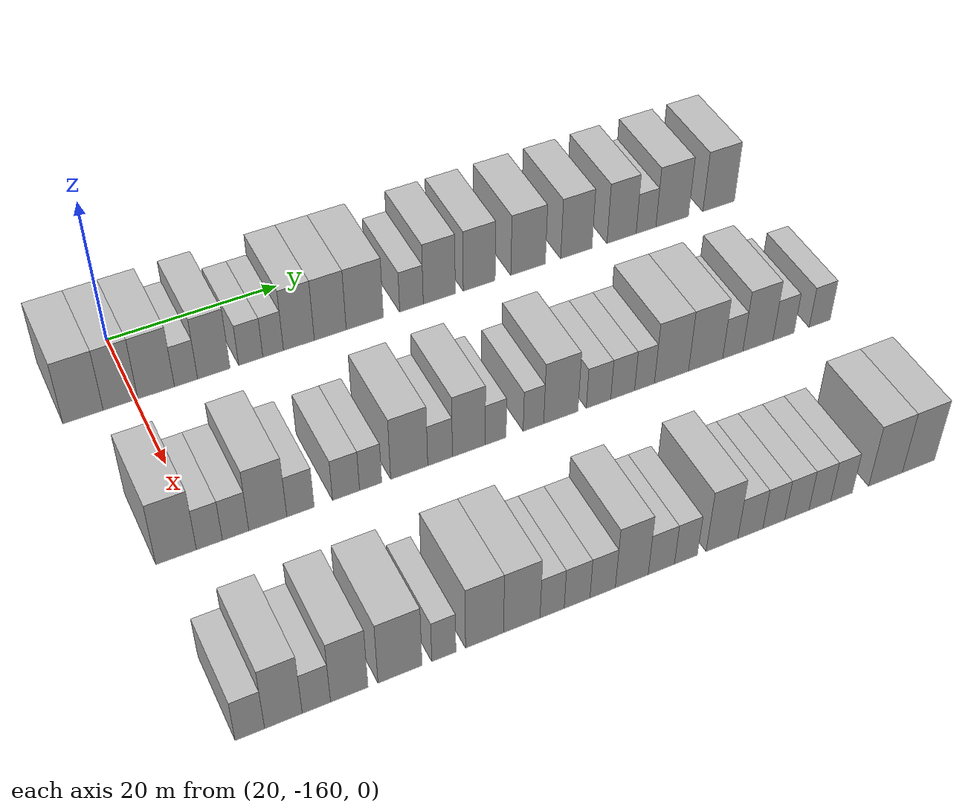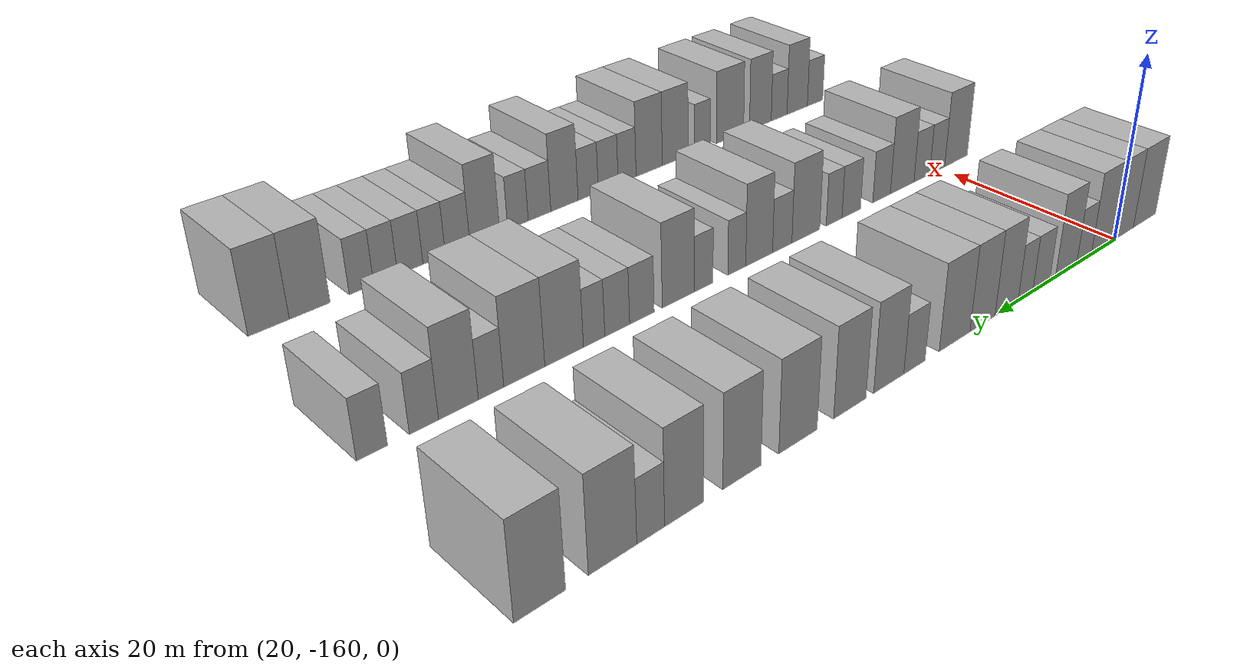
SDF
<sdf version="1.6">
 <world name="default">
  <model name="building_22">
   <static>1</static>
   <pose>25.0000 -165.7522 0 0.000000 0.000000 0.000000</pose>
   <link name="link">
    <pose>0 0 4.50 0 0 0</pose>
    <collision name="collision"><geometry><box><size>10.0000 4.4152 9.0000</size></box></geometry></collision>
    <visual name="visual">
     <cast_shadows>0</cast_shadows>
     <geometry><box><size>10.0000 4.4152 9.0000</size></box></geometry>
     <material>
      <script>
       <uri>model://HANNAS_wall/materials/scripts</uri>
       <uri>model://HANNAS_wall/materials/textures</uri>
       <name>vrc/HANNAS_wall</name>
      </script>
     </material>
    </visual>
   </link>
  </model>
  <model name="building_23">
   <static>1</static>
   <pose>25.0000 -161.6356 0 0.000000 0.000000 0.000000</pose>
   <link name="link">
    <pose>0 0 4.50 0 0 0</pose>
    <collision name="collision"><geometry><box><size>10.0000 3.8179 9.0000</size></box></geometry></collision>
    <visual name="visual">
     <cast_shadows>0</cast_shadows>
     <geometry><box><size>10.0000 3.8179 9.0000</size></box></geometry>
     <material>
      <script>
       <uri>model://HANNAS_wall/materials/scripts</uri>
       <uri>model://HANNAS_wall/materials/textures</uri>
       <name>vrc/HANNAS_wall</name>
      </script>
     </material>
    </visual>
   </link>
  </model>
  <model name="building_24">
   <static>1</static>
   <pose>25.0000 -157.6680 0 0.000000 0.000000 0.000000</pose>
   <link name="link">
    <pose>0 0 4.50 0 0 0</pose>
    <collision name="collision"><geometry><box><size>10.0000 4.1173 9.0000</size></box></geometry></collision>
    <visual name="visual">
     <cast_shadows>0</cast_shadows>
     <geometry><box><size>10.0000 4.1173 9.0000</size></box></geometry>
     <material>
      <script>
       <uri>model://HANNAS_wall/materials/scripts</uri>
       <uri>model://HANNAS_wall/materials/textures</uri>
       <name>vrc/HANNAS_wall</name>
      </script>
     </material>
    </visual>
   </link>
  </model>
  <model name="building_25">
   <static>1</static>
   <pose>25.0000 -154.2986 0 0.000000 0.000000 0.000000</pose>
   <link name="link">
    <pose>0 0 3.00 0 0 0</pose>
    <collision name="collision"><geometry><box><size>10.0000 2.6216 6.0000</size></box></geometry></collision>
    <visual name="visual">
     <cast_shadows>0</cast_shadows>
     <geometry><box><size>10.0000 2.6216 6.0000</size></box></geometry>
     <material>
      <script>
       <uri>model://HANNAS_wall/materials/scripts</uri>
       <uri>model://HANNAS_wall/materials/textures</uri>
       <name>vrc/HANNAS_wall</name>
      </script>
     </material>
    </visual>
   </link>
  </model>
  <model name="building_26">
   <static>1</static>
   <pose>25.0000 -151.1317 0 0.000000 0.000000 0.000000</pose>
   <link name="link">
    <pose>0 0 4.50 0 0 0</pose>
    <collision name="collision"><geometry><box><size>10.0000 3.7122 9.0000</size></box></geometry></collision>
    <visual name="visual">
     <cast_shadows>0</cast_shadows>
     <geometry><box><size>10.0000 3.7122 9.0000</size></box></geometry>
     <material>
      <script>
       <uri>model://HANNAS_wall/materials/scripts</uri>
       <uri>model://HANNAS_wall/materials/textures</uri>
       <name>vrc/HANNAS_wall</name>
      </script>
     </material>
    </visual>
   </link>
  </model>
  <model name="building_27">
   <static>1</static>
   <pose>25.0000 -146.8694 0 0.000000 0.000000 0.000000</pose>
   <link name="link">
    <pose>0 0 3.00 0 0 0</pose>
    <collision name="collision"><geometry><box><size>10.0000 2.8124 6.0000</size></box></geometry></collision>
    <visual name="visual">
     <cast_shadows>0</cast_shadows>
     <geometry><box><size>10.0000 2.8124 6.0000</size></box></geometry>
     <material>
      <script>
       <uri>model://HANNAS_wall/materials/scripts</uri>
       <uri>model://HANNAS_wall/materials/textures</uri>
       <name>vrc/HANNAS_wall</name>
      </script>
     </material>
    </visual>
   </link>
  </model>
  <model name="building_28">
   <static>1</static>
   <pose>25.0000 -144.2595 0 0.000000 0.000000 0.000000</pose>
   <link name="link">
    <pose>0 0 3.00 0 0 0</pose>
    <collision name="collision"><geometry><box><size>10.0000 2.4075 6.0000</size></box></geometry></collision>
    <visual name="visual">
     <cast_shadows>0</cast_shadows>
     <geometry><box><size>10.0000 2.4075 6.0000</size></box></geometry>
     <material>
      <script>
       <uri>model://HANNAS_wall/materials/scripts</uri>
       <uri>model://HANNAS_wall/materials/textures</uri>
       <name>vrc/HANNAS_wall</name>
      </script>
     </material>
    </visual>
   </link>
  </model>
  <model name="building_29">
   <static>1</static>
   <pose>25.0000 -141.2318 0 0.000000 0.000000 0.000000</pose>
   <link name="link">
    <pose>0 0 4.50 0 0 0</pose>
    <collision name="collision"><geometry><box><size>10.0000 3.6478 9.0000</size></box></geometry></collision>
    <visual name="visual">
     <cast_shadows>0</cast_shadows>
     <geometry><box><size>10.0000 3.6478 9.0000</size></box></geometry>
     <material>
      <script>
       <uri>model://HANNAS_wall/materials/scripts</uri>
       <uri>model://HANNAS_wall/materials/textures</uri>
       <name>vrc/HANNAS_wall</name>
      </script>
     </material>
    </visual>
   </link>
  </model>
  <model name="building_30">
   <static>1</static>
   <pose>25.0000 -137.4980 0 0.000000 0.000000 0.000000</pose>
   <link name="link">
    <pose>0 0 4.50 0 0 0</pose>
    <collision name="collision"><geometry><box><size>10.0000 3.8199 9.0000</size></box></geometry></collision>
    <visual name="visual">
     <cast_shadows>0</cast_shadows>
     <geometry><box><size>10.0000 3.8199 9.0000</size></box></geometry>
     <material>
      <script>
       <uri>model://HANNAS_wall/materials/scripts</uri>
       <uri>model://HANNAS_wall/materials/textures</uri>
       <name>vrc/HANNAS_wall</name>
      </script>
     </material>
    </visual>
   </link>
  </model>
  <model name="building_31">
   <static>1</static>
   <pose>25.0000 -133.3413 0 0.000000 0.000000 0.000000</pose>
   <link name="link">
    <pose>0 0 4.50 0 0 0</pose>
    <collision name="collision"><geometry><box><size>10.0000 4.4935 9.0000</size></box></geometry></collision>
    <visual name="visual">
     <cast_shadows>0</cast_shadows>
     <geometry><box><size>10.0000 4.4935 9.0000</size></box></geometry>
     <material>
      <script>
       <uri>model://HANNAS_wall/materials/scripts</uri>
       <uri>model://HANNAS_wall/materials/textures</uri>
       <name>vrc/HANNAS_wall</name>
      </script>
     </material>
    </visual>
   </link>
  </model>
  <model name="building_32">
   <static>1</static>
   <pose>25.0000 -127.6372 0 0.000000 0.000000 0.000000</pose>
   <link name="link">
    <pose>0 0 3.00 0 0 0</pose>
    <collision name="collision"><geometry><box><size>10.0000 2.9146 6.0000</size></box></geometry></collision>
    <visual name="visual">
     <cast_shadows>0</cast_shadows>
     <geometry><box><size>10.0000 2.9146 6.0000</size></box></geometry>
     <material>
      <script>
       <uri>model://HANNAS_wall/materials/scripts</uri>
       <uri>model://HANNAS_wall/materials/textures</uri>
       <name>vrc/HANNAS_wall</name>
      </script>
     </material>
    </visual>
   </link>
  </model>
  <model name="building_33">
   <static>1</static>
   <pose>25.0000 -124.1847 0 0.000000 0.000000 0.000000</pose>
   <link name="link">
    <pose>0 0 4.50 0 0 0</pose>
    <collision name="collision"><geometry><box><size>10.0000 3.9905 9.0000</size></box></geometry></collision>
    <visual name="visual">
     <cast_shadows>0</cast_shadows>
     <geometry><box><size>10.0000 3.9905 9.0000</size></box></geometry>
     <material>
      <script>
       <uri>model://HANNAS_wall/materials/scripts</uri>
       <uri>model://HANNAS_wall/materials/textures</uri>
       <name>vrc/HANNAS_wall</name>
      </script>
     </material>
    </visual>
   </link>
  </model>
  <model name="building_34">
   <static>1</static>
   <pose>25.0000 -119.1687 0 0.000000 0.000000 0.000000</pose>
   <link name="link">
    <pose>0 0 4.50 0 0 0</pose>
    <collision name="collision"><geometry><box><size>10.0000 4.0416 9.0000</size></box></geometry></collision>
    <visual name="visual">
     <cast_shadows>0</cast_shadows>
     <geometry><box><size>10.0000 4.0416 9.0000</size></box></geometry>
     <material>
      <script>
       <uri>model://HANNAS_wall/materials/scripts</uri>
       <uri>model://HANNAS_wall/materials/textures</uri>
       <name>vrc/HANNAS_wall</name>
      </script>
     </material>
    </visual>
   </link>
  </model>
  <model name="building_35">
   <static>1</static>
   <pose>25.0000 -112.9181 0 0.000000 0.000000 0.000000</pose>
   <link name="link">
    <pose>0 0 4.50 0 0 0</pose>
    <collision name="collision"><geometry><box><size>10.0000 4.4596 9.0000</size></box></geometry></collision>
    <visual name="visual">
     <cast_shadows>0</cast_shadows>
     <geometry><box><size>10.0000 4.4596 9.0000</size></box></geometry>
     <material>
      <script>
       <uri>model://HANNAS_wall/materials/scripts</uri>
       <uri>model://HANNAS_wall/materials/textures</uri>
       <name>vrc/HANNAS_wall</name>
      </script>
     </material>
    </visual>
   </link>
  </model>
  <model name="building_36">
   <static>1</static>
   <pose>25.0000 -106.6314 0 0.000000 0.000000 0.000000</pose>
   <link name="link">
    <pose>0 0 4.50 0 0 0</pose>
    <collision name="collision"><geometry><box><size>10.0000 4.1138 9.0000</size></box></geometry></collision>
    <visual name="visual">
     <cast_shadows>0</cast_shadows>
     <geometry><box><size>10.0000 4.1138 9.0000</size></box></geometry>
     <material>
      <script>
       <uri>model://HANNAS_wall/materials/scripts</uri>
       <uri>model://HANNAS_wall/materials/textures</uri>
       <name>vrc/HANNAS_wall</name>
      </script>
     </material>
    </visual>
   </link>
  </model>
  <model name="building_37">
   <static>1</static>
   <pose>25.0000 -100.6218 0 0.000000 0.000000 0.000000</pose>
   <link name="link">
    <pose>0 0 4.50 0 0 0</pose>
    <collision name="collision"><geometry><box><size>10.0000 3.9053 9.0000</size></box></geometry></collision>
    <visual name="visual">
     <cast_shadows>0</cast_shadows>
     <geometry><box><size>10.0000 3.9053 9.0000</size></box></geometry>
     <material>
      <script>
       <uri>model://HANNAS_wall/materials/scripts</uri>
       <uri>model://HANNAS_wall/materials/textures</uri>
       <name>vrc/HANNAS_wall</name>
      </script>
     </material>
    </visual>
   </link>
  </model>
  <model name="building_38">
   <static>1</static>
   <pose>25.0000 -97.3314 0 0.000000 0.000000 0.000000</pose>
   <link name="link">
    <pose>0 0 3.00 0 0 0</pose>
    <collision name="collision"><geometry><box><size>10.0000 2.6755 6.0000</size></box></geometry></collision>
    <visual name="visual">
     <cast_shadows>0</cast_shadows>
     <geometry><box><size>10.0000 2.6755 6.0000</size></box></geometry>
     <material>
      <script>
       <uri>model://HANNAS_wall/materials/scripts</uri>
       <uri>model://HANNAS_wall/materials/textures</uri>
       <name>vrc/HANNAS_wall</name>
      </script>
     </material>
    </visual>
   </link>
  </model>
  <model name="building_39">
   <static>1</static>
   <pose>25.0000 -93.7678 0 0.000000 0.000000 0.000000</pose>
   <link name="link">
    <pose>0 0 4.50 0 0 0</pose>
    <collision name="collision"><geometry><box><size>10.0000 4.4518 9.0000</size></box></geometry></collision>
    <visual name="visual">
     <cast_shadows>0</cast_shadows>
     <geometry><box><size>10.0000 4.4518 9.0000</size></box></geometry>
     <material>
      <script>
       <uri>model://HANNAS_wall/materials/scripts</uri>
       <uri>model://HANNAS_wall/materials/textures</uri>
       <name>vrc/HANNAS_wall</name>
      </script>
     </material>
    </visual>
   </link>
  </model>
  <model name="building_40">
   <static>1</static>
   <pose>25.0000 -87.3503 0 0.000000 0.000000 0.000000</pose>
   <link name="link">
    <pose>0 0 4.50 0 0 0</pose>
    <collision name="collision"><geometry><box><size>10.0000 4.3830 9.0000</size></box></geometry></collision>
    <visual name="visual">
     <cast_shadows>0</cast_shadows>
     <geometry><box><size>10.0000 4.3830 9.0000</size></box></geometry>
     <material>
      <script>
       <uri>model://HANNAS_wall/materials/scripts</uri>
       <uri>model://HANNAS_wall/materials/textures</uri>
       <name>vrc/HANNAS_wall</name>
      </script>
     </material>
    </visual>
   </link>
  </model>
  <model name="building_141">
   <static>1</static>
   <pose>47.0000 -162.9278 0 0.000000 0.000000 0.000000</pose>
   <link name="link">
    <pose>0 0 4.50 0 0 0</pose>
    <collision name="collision"><geometry><box><size>10.0000 4.1970 9.0000</size></box></geometry></collision>
    <visual name="visual">
     <cast_shadows>0</cast_shadows>
     <geometry><box><size>10.0000 4.1970 9.0000</size></box></geometry>
     <material>
      <script>
       <uri>model://HANNAS_wall/materials/scripts</uri>
       <uri>model://HANNAS_wall/materials/textures</uri>
       <name>vrc/HANNAS_wall</name>
      </script>
     </material>
    </visual>
   </link>
  </model>
  <model name="building_142">
   <static>1</static>
   <pose>47.0000 -159.4751 0 0.000000 0.000000 0.000000</pose>
   <link name="link">
    <pose>0 0 3.00 0 0 0</pose>
    <collision name="collision"><geometry><box><size>10.0000 2.7083 6.0000</size></box></geometry></collision>
    <visual name="visual">
     <cast_shadows>0</cast_shadows>
     <geometry><box><size>10.0000 2.7083 6.0000</size></box></geometry>
     <material>
      <script>
       <uri>model://HANNAS_wall/materials/scripts</uri>
       <uri>model://HANNAS_wall/materials/textures</uri>
       <name>vrc/HANNAS_wall</name>
      </script>
     </material>
    </visual>
   </link>
  </model>
  <model name="building_143">
   <static>1</static>
   <pose>47.0000 -156.7263 0 0.000000 0.000000 0.000000</pose>
   <link name="link">
    <pose>0 0 3.00 0 0 0</pose>
    <collision name="collision"><geometry><box><size>10.0000 2.7892 6.0000</size></box></geometry></collision>
    <visual name="visual">
     <cast_shadows>0</cast_shadows>
     <geometry><box><size>10.0000 2.7892 6.0000</size></box></geometry>
     <material>
      <script>
       <uri>model://HANNAS_wall/materials/scripts</uri>
       <uri>model://HANNAS_wall/materials/textures</uri>
       <name>vrc/HANNAS_wall</name>
      </script>
     </material>
    </visual>
   </link>
  </model>
  <model name="building_144">
   <static>1</static>
   <pose>47.0000 -153.3008 0 0.000000 0.000000 0.000000</pose>
   <link name="link">
    <pose>0 0 4.50 0 0 0</pose>
    <collision name="collision"><geometry><box><size>10.0000 4.0619 9.0000</size></box></geometry></collision>
    <visual name="visual">
     <cast_shadows>0</cast_shadows>
     <geometry><box><size>10.0000 4.0619 9.0000</size></box></geometry>
     <material>
      <script>
       <uri>model://HANNAS_wall/materials/scripts</uri>
       <uri>model://HANNAS_wall/materials/textures</uri>
       <name>vrc/HANNAS_wall</name>
      </script>
     </material>
    </visual>
   </link>
  </model>
  <model name="building_145">
   <static>1</static>
   <pose>47.0000 -149.7954 0 0.000000 0.000000 0.000000</pose>
   <link name="link">
    <pose>0 0 3.00 0 0 0</pose>
    <collision name="collision"><geometry><box><size>10.0000 2.9490 6.0000</size></box></geometry></collision>
    <visual name="visual">
     <cast_shadows>0</cast_shadows>
     <geometry><box><size>10.0000 2.9490 6.0000</size></box></geometry>
     <material>
      <script>
       <uri>model://HANNAS_wall/materials/scripts</uri>
       <uri>model://HANNAS_wall/materials/textures</uri>
       <name>vrc/HANNAS_wall</name>
      </script>
     </material>
    </visual>
   </link>
  </model>
  <model name="building_146">
   <static>1</static>
   <pose>47.0000 -144.8355 0 0.000000 0.000000 0.000000</pose>
   <link name="link">
    <pose>0 0 3.00 0 0 0</pose>
    <collision name="collision"><geometry><box><size>10.0000 2.9708 6.0000</size></box></geometry></collision>
    <visual name="visual">
     <cast_shadows>0</cast_shadows>
     <geometry><box><size>10.0000 2.9708 6.0000</size></box></geometry>
     <material>
      <script>
       <uri>model://HANNAS_wall/materials/scripts</uri>
       <uri>model://HANNAS_wall/materials/textures</uri>
       <name>vrc/HANNAS_wall</name>
      </script>
     </material>
    </visual>
   </link>
  </model>
  <model name="building_147">
   <static>1</static>
   <pose>47.0000 -142.1214 0 0.000000 0.000000 0.000000</pose>
   <link name="link">
    <pose>0 0 3.00 0 0 0</pose>
    <collision name="collision"><geometry><box><size>10.0000 2.4573 6.0000</size></box></geometry></collision>
    <visual name="visual">
     <cast_shadows>0</cast_shadows>
     <geometry><box><size>10.0000 2.4573 6.0000</size></box></geometry>
     <material>
      <script>
       <uri>model://HANNAS_wall/materials/scripts</uri>
       <uri>model://HANNAS_wall/materials/textures</uri>
       <name>vrc/HANNAS_wall</name>
      </script>
     </material>
    </visual>
   </link>
  </model>
  <model name="building_148">
   <static>1</static>
   <pose>47.0000 -137.8067 0 0.000000 0.000000 0.000000</pose>
   <link name="link">
    <pose>0 0 4.50 0 0 0</pose>
    <collision name="collision"><geometry><box><size>10.0000 4.1722 9.0000</size></box></geometry></collision>
    <visual name="visual">
     <cast_shadows>0</cast_shadows>
     <geometry><box><size>10.0000 4.1722 9.0000</size></box></geometry>
     <material>
      <script>
       <uri>model://HANNAS_wall/materials/scripts</uri>
       <uri>model://HANNAS_wall/materials/textures</uri>
       <name>vrc/HANNAS_wall</name>
      </script>
     </material>
    </visual>
   </link>
  </model>
  <model name="building_149">
   <static>1</static>
   <pose>47.0000 -134.3171 0 0.000000 0.000000 0.000000</pose>
   <link name="link">
    <pose>0 0 3.00 0 0 0</pose>
    <collision name="collision"><geometry><box><size>10.0000 2.8071 6.0000</size></box></geometry></collision>
    <visual name="visual">
     <cast_shadows>0</cast_shadows>
     <geometry><box><size>10.0000 2.8071 6.0000</size></box></geometry>
     <material>
      <script>
       <uri>model://HANNAS_wall/materials/scripts</uri>
       <uri>model://HANNAS_wall/materials/textures</uri>
       <name>vrc/HANNAS_wall</name>
      </script>
     </material>
    </visual>
   </link>
  </model>
  <model name="building_150">
   <static>1</static>
   <pose>47.0000 -131.0233 0 0.000000 0.000000 0.000000</pose>
   <link name="link">
    <pose>0 0 4.50 0 0 0</pose>
    <collision name="collision"><geometry><box><size>10.0000 3.7806 9.0000</size></box></geometry></collision>
    <visual name="visual">
     <cast_shadows>0</cast_shadows>
     <geometry><box><size>10.0000 3.7806 9.0000</size></box></geometry>
     <material>
      <script>
       <uri>model://HANNAS_wall/materials/scripts</uri>
       <uri>model://HANNAS_wall/materials/textures</uri>
       <name>vrc/HANNAS_wall</name>
      </script>
     </material>
    </visual>
   </link>
  </model>
  <model name="building_151">
   <static>1</static>
   <pose>47.0000 -127.9169 0 0.000000 0.000000 0.000000</pose>
   <link name="link">
    <pose>0 0 3.00 0 0 0</pose>
    <collision name="collision"><geometry><box><size>10.0000 2.4321 6.0000</size></box></geometry></collision>
    <visual name="visual">
     <cast_shadows>0</cast_shadows>
     <geometry><box><size>10.0000 2.4321 6.0000</size></box></geometry>
     <material>
      <script>
       <uri>model://HANNAS_wall/materials/scripts</uri>
       <uri>model://HANNAS_wall/materials/textures</uri>
       <name>vrc/HANNAS_wall</name>
      </script>
     </material>
    </visual>
   </link>
  </model>
  <model name="building_152">
   <static>1</static>
   <pose>47.0000 -123.4876 0 0.000000 0.000000 0.000000</pose>
   <link name="link">
    <pose>0 0 3.00 0 0 0</pose>
    <collision name="collision"><geometry><box><size>10.0000 2.4264 6.0000</size></box></geometry></collision>
    <visual name="visual">
     <cast_shadows>0</cast_shadows>
     <geometry><box><size>10.0000 2.4264 6.0000</size></box></geometry>
     <material>
      <script>
       <uri>model://HANNAS_wall/materials/scripts</uri>
       <uri>model://HANNAS_wall/materials/textures</uri>
       <name>vrc/HANNAS_wall</name>
      </script>
     </material>
    </visual>
   </link>
  </model>
  <model name="building_153">
   <static>1</static>
   <pose>47.0000 -120.2264 0 0.000000 0.000000 0.000000</pose>
   <link name="link">
    <pose>0 0 4.50 0 0 0</pose>
    <collision name="collision"><geometry><box><size>10.0000 4.0959 9.0000</size></box></geometry></collision>
    <visual name="visual">
     <cast_shadows>0</cast_shadows>
     <geometry><box><size>10.0000 4.0959 9.0000</size></box></geometry>
     <material>
      <script>
       <uri>model://HANNAS_wall/materials/scripts</uri>
       <uri>model://HANNAS_wall/materials/textures</uri>
       <name>vrc/HANNAS_wall</name>
      </script>
     </material>
    </visual>
   </link>
  </model>
  <model name="building_154">
   <static>1</static>
   <pose>47.0000 -115.6942 0 0.000000 0.000000 0.000000</pose>
   <link name="link">
    <pose>0 0 3.00 0 0 0</pose>
    <collision name="collision"><geometry><box><size>10.0000 2.9686 6.0000</size></box></geometry></collision>
    <visual name="visual">
     <cast_shadows>0</cast_shadows>
     <geometry><box><size>10.0000 2.9686 6.0000</size></box></geometry>
     <material>
      <script>
       <uri>model://HANNAS_wall/materials/scripts</uri>
       <uri>model://HANNAS_wall/materials/textures</uri>
       <name>vrc/HANNAS_wall</name>
      </script>
     </material>
    </visual>
   </link>
  </model>
  <model name="building_155">
   <static>1</static>
   <pose>47.0000 -112.7504 0 0.000000 0.000000 0.000000</pose>
   <link name="link">
    <pose>0 0 3.00 0 0 0</pose>
    <collision name="collision"><geometry><box><size>10.0000 2.9190 6.0000</size></box></geometry></collision>
    <visual name="visual">
     <cast_shadows>0</cast_shadows>
     <geometry><box><size>10.0000 2.9190 6.0000</size></box></geometry>
     <material>
      <script>
       <uri>model://HANNAS_wall/materials/scripts</uri>
       <uri>model://HANNAS_wall/materials/textures</uri>
       <name>vrc/HANNAS_wall</name>
      </script>
     </material>
    </visual>
   </link>
  </model>
  <model name="building_156">
   <static>1</static>
   <pose>47.0000 -110.0682 0 0.000000 0.000000 0.000000</pose>
   <link name="link">
    <pose>0 0 3.00 0 0 0</pose>
    <collision name="collision"><geometry><box><size>10.0000 2.4454 6.0000</size></box></geometry></collision>
    <visual name="visual">
     <cast_shadows>0</cast_shadows>
     <geometry><box><size>10.0000 2.4454 6.0000</size></box></geometry>
     <material>
      <script>
       <uri>model://HANNAS_wall/materials/scripts</uri>
       <uri>model://HANNAS_wall/materials/textures</uri>
       <name>vrc/HANNAS_wall</name>
      </script>
     </material>
    </visual>
   </link>
  </model>
  <model name="building_157">
   <static>1</static>
   <pose>47.0000 -106.7144 0 0.000000 0.000000 0.000000</pose>
   <link name="link">
    <pose>0 0 4.50 0 0 0</pose>
    <collision name="collision"><geometry><box><size>10.0000 4.2621 9.0000</size></box></geometry></collision>
    <visual name="visual">
     <cast_shadows>0</cast_shadows>
     <geometry><box><size>10.0000 4.2621 9.0000</size></box></geometry>
     <material>
      <script>
       <uri>model://HANNAS_wall/materials/scripts</uri>
       <uri>model://HANNAS_wall/materials/textures</uri>
       <name>vrc/HANNAS_wall</name>
      </script>
     </material>
    </visual>
   </link>
  </model>
  <model name="building_158">
   <static>1</static>
   <pose>47.0000 -102.4196 0 0.000000 0.000000 0.000000</pose>
   <link name="link">
    <pose>0 0 4.50 0 0 0</pose>
    <collision name="collision"><geometry><box><size>10.0000 4.3275 9.0000</size></box></geometry></collision>
    <visual name="visual">
     <cast_shadows>0</cast_shadows>
     <geometry><box><size>10.0000 4.3275 9.0000</size></box></geometry>
     <material>
      <script>
       <uri>model://HANNAS_wall/materials/scripts</uri>
       <uri>model://HANNAS_wall/materials/textures</uri>
       <name>vrc/HANNAS_wall</name>
      </script>
     </material>
    </visual>
   </link>
  </model>
  <model name="building_159">
   <static>1</static>
   <pose>47.0000 -98.9668 0 0.000000 0.000000 0.000000</pose>
   <link name="link">
    <pose>0 0 3.00 0 0 0</pose>
    <collision name="collision"><geometry><box><size>10.0000 2.5781 6.0000</size></box></geometry></collision>
    <visual name="visual">
     <cast_shadows>0</cast_shadows>
     <geometry><box><size>10.0000 2.5781 6.0000</size></box></geometry>
     <material>
      <script>
       <uri>model://HANNAS_wall/materials/scripts</uri>
       <uri>model://HANNAS_wall/materials/textures</uri>
       <name>vrc/HANNAS_wall</name>
      </script>
     </material>
    </visual>
   </link>
  </model>
  <model name="building_160">
   <static>1</static>
   <pose>47.0000 -95.7285 0 0.000000 0.000000 0.000000</pose>
   <link name="link">
    <pose>0 0 4.50 0 0 0</pose>
    <collision name="collision"><geometry><box><size>10.0000 3.8985 9.0000</size></box></geometry></collision>
    <visual name="visual">
     <cast_shadows>0</cast_shadows>
     <geometry><box><size>10.0000 3.8985 9.0000</size></box></geometry>
     <material>
      <script>
       <uri>model://HANNAS_wall/materials/scripts</uri>
       <uri>model://HANNAS_wall/materials/textures</uri>
       <name>vrc/HANNAS_wall</name>
      </script>
     </material>
    </visual>
   </link>
  </model>
  <model name="building_161">
   <static>1</static>
   <pose>47.0000 -92.3996 0 0.000000 0.000000 0.000000</pose>
   <link name="link">
    <pose>0 0 3.00 0 0 0</pose>
    <collision name="collision"><geometry><box><size>10.0000 2.7593 6.0000</size></box></geometry></collision>
    <visual name="visual">
     <cast_shadows>0</cast_shadows>
     <geometry><box><size>10.0000 2.7593 6.0000</size></box></geometry>
     <material>
      <script>
       <uri>model://HANNAS_wall/materials/scripts</uri>
       <uri>model://HANNAS_wall/materials/textures</uri>
       <name>vrc/HANNAS_wall</name>
      </script>
     </material>
    </visual>
   </link>
  </model>
  <model name="building_162">
   <static>1</static>
   <pose>47.0000 -87.6293 0 0.000000 0.000000 0.000000</pose>
   <link name="link">
    <pose>0 0 3.00 0 0 0</pose>
    <collision name="collision"><geometry><box><size>10.0000 2.7813 6.0000</size></box></geometry></collision>
    <visual name="visual">
     <cast_shadows>0</cast_shadows>
     <geometry><box><size>10.0000 2.7813 6.0000</size></box></geometry>
     <material>
      <script>
       <uri>model://HANNAS_wall/materials/scripts</uri>
       <uri>model://HANNAS_wall/materials/textures</uri>
       <name>vrc/HANNAS_wall</name>
      </script>
     </material>
    </visual>
   </link>
  </model>
  <model name="building_270">
   <static>1</static>
   <pose>69.0000 -163.4657 0 0.000000 0.000000 0.000000</pose>
   <link name="link">
    <pose>0 0 3.00 0 0 0</pose>
    <collision name="collision"><geometry><box><size>10.0000 2.8358 6.0000</size></box></geometry></collision>
    <visual name="visual">
     <cast_shadows>0</cast_shadows>
     <geometry><box><size>10.0000 2.8358 6.0000</size></box></geometry>
     <material>
      <script>
       <uri>model://HANNAS_wall/materials/scripts</uri>
       <uri>model://HANNAS_wall/materials/textures</uri>
       <name>vrc/HANNAS_wall</name>
      </script>
     </material>
    </visual>
   </link>
  </model>
  <model name="building_271">
   <static>1</static>
   <pose>69.0000 -160.2161 0 0.000000 0.000000 0.000000</pose>
   <link name="link">
    <pose>0 0 4.50 0 0 0</pose>
    <collision name="collision"><geometry><box><size>10.0000 3.6635 9.0000</size></box></geometry></collision>
    <visual name="visual">
     <cast_shadows>0</cast_shadows>
     <geometry><box><size>10.0000 3.6635 9.0000</size></box></geometry>
     <material>
      <script>
       <uri>model://HANNAS_wall/materials/scripts</uri>
       <uri>model://HANNAS_wall/materials/textures</uri>
       <name>vrc/HANNAS_wall</name>
      </script>
     </material>
    </visual>
   </link>
  </model>
  <model name="building_272">
   <static>1</static>
   <pose>69.0000 -156.9940 0 0.000000 0.000000 0.000000</pose>
   <link name="link">
    <pose>0 0 3.00 0 0 0</pose>
    <collision name="collision"><geometry><box><size>10.0000 2.7805 6.0000</size></box></geometry></collision>
    <visual name="visual">
     <cast_shadows>0</cast_shadows>
     <geometry><box><size>10.0000 2.7805 6.0000</size></box></geometry>
     <material>
      <script>
       <uri>model://HANNAS_wall/materials/scripts</uri>
       <uri>model://HANNAS_wall/materials/textures</uri>
       <name>vrc/HANNAS_wall</name>
      </script>
     </material>
    </visual>
   </link>
  </model>
  <model name="building_273">
   <static>1</static>
   <pose>69.0000 -153.7385 0 0.000000 0.000000 0.000000</pose>
   <link name="link">
    <pose>0 0 4.50 0 0 0</pose>
    <collision name="collision"><geometry><box><size>10.0000 3.7305 9.0000</size></box></geometry></collision>
    <visual name="visual">
     <cast_shadows>0</cast_shadows>
     <geometry><box><size>10.0000 3.7305 9.0000</size></box></geometry>
     <material>
      <script>
       <uri>model://HANNAS_wall/materials/scripts</uri>
       <uri>model://HANNAS_wall/materials/textures</uri>
       <name>vrc/HANNAS_wall</name>
      </script>
     </material>
    </visual>
   </link>
  </model>
  <model name="building_274">
   <static>1</static>
   <pose>69.0000 -148.6379 0 0.000000 0.000000 0.000000</pose>
   <link name="link">
    <pose>0 0 4.50 0 0 0</pose>
    <collision name="collision"><geometry><box><size>10.0000 4.4707 9.0000</size></box></geometry></collision>
    <visual name="visual">
     <cast_shadows>0</cast_shadows>
     <geometry><box><size>10.0000 4.4707 9.0000</size></box></geometry>
     <material>
      <script>
       <uri>model://HANNAS_wall/materials/scripts</uri>
       <uri>model://HANNAS_wall/materials/textures</uri>
       <name>vrc/HANNAS_wall</name>
      </script>
     </material>
    </visual>
   </link>
  </model>
  <model name="building_275">
   <static>1</static>
   <pose>69.0000 -144.1582 0 0.000000 0.000000 0.000000</pose>
   <link name="link">
    <pose>0 0 3.00 0 0 0</pose>
    <collision name="collision"><geometry><box><size>10.0000 2.4888 6.0000</size></box></geometry></collision>
    <visual name="visual">
     <cast_shadows>0</cast_shadows>
     <geometry><box><size>10.0000 2.4888 6.0000</size></box></geometry>
     <material>
      <script>
       <uri>model://HANNAS_wall/materials/scripts</uri>
       <uri>model://HANNAS_wall/materials/textures</uri>
       <name>vrc/HANNAS_wall</name>
      </script>
     </material>
    </visual>
   </link>
  </model>
  <model name="building_276">
   <static>1</static>
   <pose>69.0000 -139.9264 0 0.000000 0.000000 0.000000</pose>
   <link name="link">
    <pose>0 0 4.50 0 0 0</pose>
    <collision name="collision"><geometry><box><size>10.0000 3.9747 9.0000</size></box></geometry></collision>
    <visual name="visual">
     <cast_shadows>0</cast_shadows>
     <geometry><box><size>10.0000 3.9747 9.0000</size></box></geometry>
     <material>
      <script>
       <uri>model://HANNAS_wall/materials/scripts</uri>
       <uri>model://HANNAS_wall/materials/textures</uri>
       <name>vrc/HANNAS_wall</name>
      </script>
     </material>
    </visual>
   </link>
  </model>
  <model name="building_277">
   <static>1</static>
   <pose>69.0000 -135.9903 0 0.000000 0.000000 0.000000</pose>
   <link name="link">
    <pose>0 0 4.50 0 0 0</pose>
    <collision name="collision"><geometry><box><size>10.0000 3.8975 9.0000</size></box></geometry></collision>
    <visual name="visual">
     <cast_shadows>0</cast_shadows>
     <geometry><box><size>10.0000 3.8975 9.0000</size></box></geometry>
     <material>
      <script>
       <uri>model://HANNAS_wall/materials/scripts</uri>
       <uri>model://HANNAS_wall/materials/textures</uri>
       <name>vrc/HANNAS_wall</name>
      </script>
     </material>
    </visual>
   </link>
  </model>
  <model name="building_278">
   <static>1</static>
   <pose>69.0000 -132.7406 0 0.000000 0.000000 0.000000</pose>
   <link name="link">
    <pose>0 0 3.00 0 0 0</pose>
    <collision name="collision"><geometry><box><size>10.0000 2.6018 6.0000</size></box></geometry></collision>
    <visual name="visual">
     <cast_shadows>0</cast_shadows>
     <geometry><box><size>10.0000 2.6018 6.0000</size></box></geometry>
     <material>
      <script>
       <uri>model://HANNAS_wall/materials/scripts</uri>
       <uri>model://HANNAS_wall/materials/textures</uri>
       <name>vrc/HANNAS_wall</name>
      </script>
     </material>
    </visual>
   </link>
  </model>
  <model name="building_279">
   <static>1</static>
   <pose>69.0000 -130.0388 0 0.000000 0.000000 0.000000</pose>
   <link name="link">
    <pose>0 0 3.00 0 0 0</pose>
    <collision name="collision"><geometry><box><size>10.0000 2.8018 6.0000</size></box></geometry></collision>
    <visual name="visual">
     <cast_shadows>0</cast_shadows>
     <geometry><box><size>10.0000 2.8018 6.0000</size></box></geometry>
     <material>
      <script>
       <uri>model://HANNAS_wall/materials/scripts</uri>
       <uri>model://HANNAS_wall/materials/textures</uri>
       <name>vrc/HANNAS_wall</name>
      </script>
     </material>
    </visual>
   </link>
  </model>
  <model name="building_280">
   <static>1</static>
   <pose>69.0000 -127.2416 0 0.000000 0.000000 0.000000</pose>
   <link name="link">
    <pose>0 0 3.00 0 0 0</pose>
    <collision name="collision"><geometry><box><size>10.0000 2.7926 6.0000</size></box></geometry></collision>
    <visual name="visual">
     <cast_shadows>0</cast_shadows>
     <geometry><box><size>10.0000 2.7926 6.0000</size></box></geometry>
     <material>
      <script>
       <uri>model://HANNAS_wall/materials/scripts</uri>
       <uri>model://HANNAS_wall/materials/textures</uri>
       <name>vrc/HANNAS_wall</name>
      </script>
     </material>
    </visual>
   </link>
  </model>
  <model name="building_281">
   <static>1</static>
   <pose>69.0000 -124.0153 0 0.000000 0.000000 0.000000</pose>
   <link name="link">
    <pose>0 0 4.50 0 0 0</pose>
    <collision name="collision"><geometry><box><size>10.0000 3.6600 9.0000</size></box></geometry></collision>
    <visual name="visual">
     <cast_shadows>0</cast_shadows>
     <geometry><box><size>10.0000 3.6600 9.0000</size></box></geometry>
     <material>
      <script>
       <uri>model://HANNAS_wall/materials/scripts</uri>
       <uri>model://HANNAS_wall/materials/textures</uri>
       <name>vrc/HANNAS_wall</name>
      </script>
     </material>
    </visual>
   </link>
  </model>
  <model name="building_282">
   <static>1</static>
   <pose>69.0000 -120.7093 0 0.000000 0.000000 0.000000</pose>
   <link name="link">
    <pose>0 0 3.00 0 0 0</pose>
    <collision name="collision"><geometry><box><size>10.0000 2.9519 6.0000</size></box></geometry></collision>
    <visual name="visual">
     <cast_shadows>0</cast_shadows>
     <geometry><box><size>10.0000 2.9519 6.0000</size></box></geometry>
     <material>
      <script>
       <uri>model://HANNAS_wall/materials/scripts</uri>
       <uri>model://HANNAS_wall/materials/textures</uri>
       <name>vrc/HANNAS_wall</name>
      </script>
     </material>
    </visual>
   </link>
  </model>
  <model name="building_283">
   <static>1</static>
   <pose>69.0000 -117.9300 0 0.000000 0.000000 0.000000</pose>
   <link name="link">
    <pose>0 0 3.00 0 0 0</pose>
    <collision name="collision"><geometry><box><size>10.0000 2.6068 6.0000</size></box></geometry></collision>
    <visual name="visual">
     <cast_shadows>0</cast_shadows>
     <geometry><box><size>10.0000 2.6068 6.0000</size></box></geometry>
     <material>
      <script>
       <uri>model://HANNAS_wall/materials/scripts</uri>
       <uri>model://HANNAS_wall/materials/textures</uri>
       <name>vrc/HANNAS_wall</name>
      </script>
     </material>
    </visual>
   </link>
  </model>
  <model name="building_284">
   <static>1</static>
   <pose>69.0000 -113.8001 0 0.000000 0.000000 0.000000</pose>
   <link name="link">
    <pose>0 0 4.50 0 0 0</pose>
    <collision name="collision"><geometry><box><size>10.0000 3.6528 9.0000</size></box></geometry></collision>
    <visual name="visual">
     <cast_shadows>0</cast_shadows>
     <geometry><box><size>10.0000 3.6528 9.0000</size></box></geometry>
     <material>
      <script>
       <uri>model://HANNAS_wall/materials/scripts</uri>
       <uri>model://HANNAS_wall/materials/textures</uri>
       <name>vrc/HANNAS_wall</name>
      </script>
     </material>
    </visual>
   </link>
  </model>
  <model name="building_285">
   <static>1</static>
   <pose>69.0000 -110.5106 0 0.000000 0.000000 0.000000</pose>
   <link name="link">
    <pose>0 0 3.00 0 0 0</pose>
    <collision name="collision"><geometry><box><size>10.0000 2.9263 6.0000</size></box></geometry></collision>
    <visual name="visual">
     <cast_shadows>0</cast_shadows>
     <geometry><box><size>10.0000 2.9263 6.0000</size></box></geometry>
     <material>
      <script>
       <uri>model://HANNAS_wall/materials/scripts</uri>
       <uri>model://HANNAS_wall/materials/textures</uri>
       <name>vrc/HANNAS_wall</name>
      </script>
     </material>
    </visual>
   </link>
  </model>
  <model name="building_286">
   <static>1</static>
   <pose>69.0000 -107.7539 0 0.000000 0.000000 0.000000</pose>
   <link name="link">
    <pose>0 0 3.00 0 0 0</pose>
    <collision name="collision"><geometry><box><size>10.0000 2.5871 6.0000</size></box></geometry></collision>
    <visual name="visual">
     <cast_shadows>0</cast_shadows>
     <geometry><box><size>10.0000 2.5871 6.0000</size></box></geometry>
     <material>
      <script>
       <uri>model://HANNAS_wall/materials/scripts</uri>
       <uri>model://HANNAS_wall/materials/textures</uri>
       <name>vrc/HANNAS_wall</name>
      </script>
     </material>
    </visual>
   </link>
  </model>
  <model name="building_287">
   <static>1</static>
   <pose>69.0000 -105.0229 0 0.000000 0.000000 0.000000</pose>
   <link name="link">
    <pose>0 0 3.00 0 0 0</pose>
    <collision name="collision"><geometry><box><size>10.0000 2.8748 6.0000</size></box></geometry></collision>
    <visual name="visual">
     <cast_shadows>0</cast_shadows>
     <geometry><box><size>10.0000 2.8748 6.0000</size></box></geometry>
     <material>
      <script>
       <uri>model://HANNAS_wall/materials/scripts</uri>
       <uri>model://HANNAS_wall/materials/textures</uri>
       <name>vrc/HANNAS_wall</name>
      </script>
     </material>
    </visual>
   </link>
  </model>
  <model name="building_288">
   <static>1</static>
   <pose>69.0000 -102.2784 0 0.000000 0.000000 0.000000</pose>
   <link name="link">
    <pose>0 0 3.00 0 0 0</pose>
    <collision name="collision"><geometry><box><size>10.0000 2.6142 6.0000</size></box></geometry></collision>
    <visual name="visual">
     <cast_shadows>0</cast_shadows>
     <geometry><box><size>10.0000 2.6142 6.0000</size></box></geometry>
     <material>
      <script>
       <uri>model://HANNAS_wall/materials/scripts</uri>
       <uri>model://HANNAS_wall/materials/textures</uri>
       <name>vrc/HANNAS_wall</name>
      </script>
     </material>
    </visual>
   </link>
  </model>
  <model name="building_289">
   <static>1</static>
   <pose>69.0000 -99.6557 0 0.000000 0.000000 0.000000</pose>
   <link name="link">
    <pose>0 0 3.00 0 0 0</pose>
    <collision name="collision"><geometry><box><size>10.0000 2.6312 6.0000</size></box></geometry></collision>
    <visual name="visual">
     <cast_shadows>0</cast_shadows>
     <geometry><box><size>10.0000 2.6312 6.0000</size></box></geometry>
     <material>
      <script>
       <uri>model://HANNAS_wall/materials/scripts</uri>
       <uri>model://HANNAS_wall/materials/textures</uri>
       <name>vrc/HANNAS_wall</name>
      </script>
     </material>
    </visual>
   </link>
  </model>
  <model name="building_290">
   <static>1</static>
   <pose>69.0000 -94.2677 0 0.000000 0.000000 0.000000</pose>
   <link name="link">
    <pose>0 0 4.50 0 0 0</pose>
    <collision name="collision"><geometry><box><size>10.0000 4.1448 9.0000</size></box></geometry></collision>
    <visual name="visual">
     <cast_shadows>0</cast_shadows>
     <geometry><box><size>10.0000 4.1448 9.0000</size></box></geometry>
     <material>
      <script>
       <uri>model://HANNAS_wall/materials/scripts</uri>
       <uri>model://HANNAS_wall/materials/textures</uri>
       <name>vrc/HANNAS_wall</name>
      </script>
     </material>
    </visual>
   </link>
  </model>
  <model name="building_291">
   <static>1</static>
   <pose>69.0000 -90.1786 0 0.000000 0.000000 0.000000</pose>
   <link name="link">
    <pose>0 0 4.50 0 0 0</pose>
    <collision name="collision"><geometry><box><size>10.0000 4.0335 9.0000</size></box></geometry></collision>
    <visual name="visual">
     <cast_shadows>0</cast_shadows>
     <geometry><box><size>10.0000 4.0335 9.0000</size></box></geometry>
     <material>
      <script>
       <uri>model://HANNAS_wall/materials/scripts</uri>
       <uri>model://HANNAS_wall/materials/textures</uri>
       <name>vrc/HANNAS_wall</name>
      </script>
     </material>
    </visual>
   </link>
  </model>
 </world>
</sdf>
